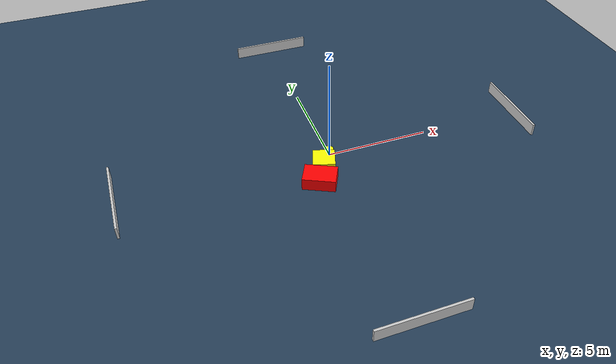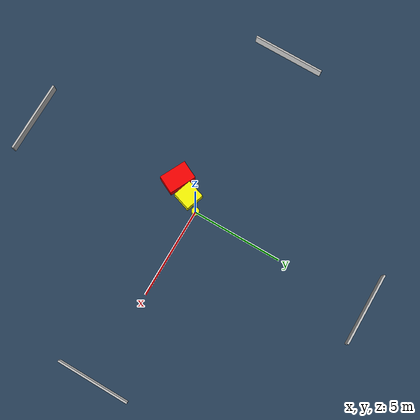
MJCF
<?xml version="1.0" ?>
<mujoco model="generated_environment">
  <option timestep="0.01" integrator="RK4" cone="elliptic"/>
  <default>
    <geom density="1"/>
  </default>
  <asset>
    <texture builtin="gradient" height="3072" name="skybox" rgb1="0.3 0.5 0.7" rgb2="0 0 0" type="skybox" width="512"/>
    <texture builtin="checker" height="300" name="groundplane" rgb1="0.2 0.3 0.4" rgb2="0.1 0.2 0.3" type="2d" width="300"/>
    <material name="groundplane" reflectance="0.2" texrepeat="5 5" texture="groundplane"/>
  </asset>
  <worldbody>
    <light dir="0 0 -1" directional="true" pos="0 0 1.5"/>
    <geom condim="3" friction="0.5 0.005 0.001" material="groundplane" name="floor" pos="0 0 0" size="0 0 0.05" type="plane"/>
    <body name="walls">
      <geom name="wall_1" condim="4" pos="-10.0 0.0 0.3" rgba="0.800000011920929 0.800000011920929 0.800000011920929 1.0" size="0.05 2.0 0.3" type="box"/>
      <geom name="wall_2" condim="4" pos="10.0 0.0 0.3" rgba="0.800000011920929 0.800000011920929 0.800000011920929 1.0" size="0.05 2.0 0.3" type="box"/>
      <geom name="wall_3" condim="4" pos="0.0 -10.0 0.3" rgba="0.800000011920929 0.800000011920929 0.800000011920929 1.0" size="2.0 0.05 0.3" type="box"/>
      <geom name="wall_4" condim="4" pos="0.0 10.0 0.3" rgba="0.800000011920929 0.800000011920929 0.800000011920929 1.0" size="2.0 0.05 0.3" type="box"/>
    </body>
    <body name="robot">
      <joint name="joint_x" type="slide" pos="0 0 0" axis="1 0 0"/>
      <joint name="joint_y" type="slide" pos="0 0 0" axis="0 1 0"/>
      <geom name="robot" type="cylinder" pos="0.0 0.0 0.2" size="0.2 0.2 0.0" mass="5.0" friction="1.0 0.005 0.0001" condim="4" rgba="1.0 1.0 0.0 1.0"/>
    </body>
    <body name="obstacle_1_movable">
      <geom name="obstacle_1_movable" condim="4" pos="-0.5182683669542969 -0.7096763489382487 0.3" euler="0 0 341.65353546978344" friction="0.0 0.005 0.001" rgba="1.0 1.0 0.0 1.0" size="0.5191381777647355 0.5159722110660886 0.3" type="box" mass="0.1"/>
      <joint type="free"/>
    </body>
    <body name="obstacle_2_static">
      <geom name="obstacle_2_static" condim="4" pos="-1.0501791025760632 -1.6844881907603066 0.3" euler="0 0 63.700427572995096" friction="0.0 0.005 0.001" rgba="1.0 0.0 0.0 1.0" size="0.5170677272440272 0.7642078813556332 0.3" type="box"/>
    </body>
  </worldbody>
  <actuator>
    <motor name="actuator_x" joint="joint_x" gear="1" ctrlrange="-1 1"/>
    <motor name="actuator_y" joint="joint_y" gear="1" ctrlrange="-1 1"/>
  </actuator>
</mujoco>
